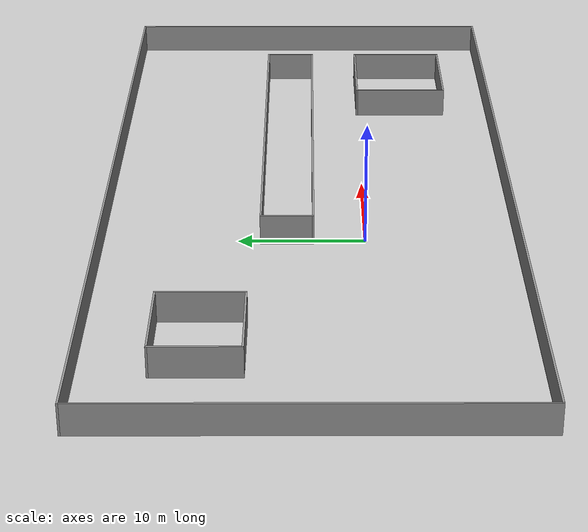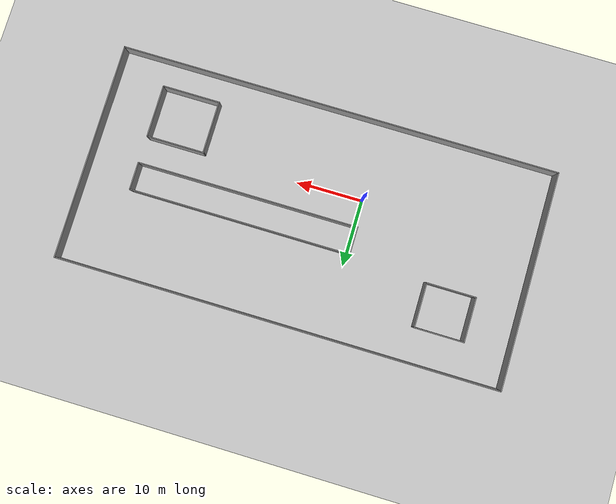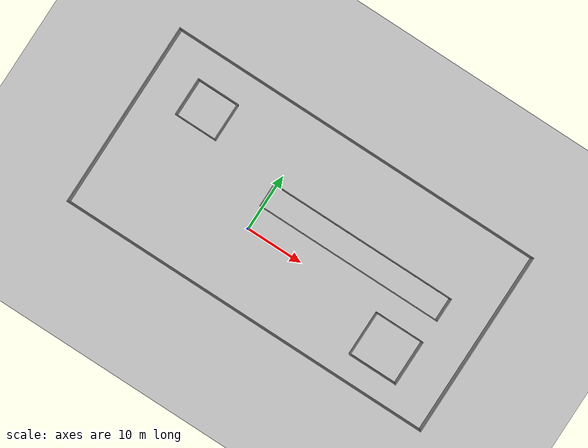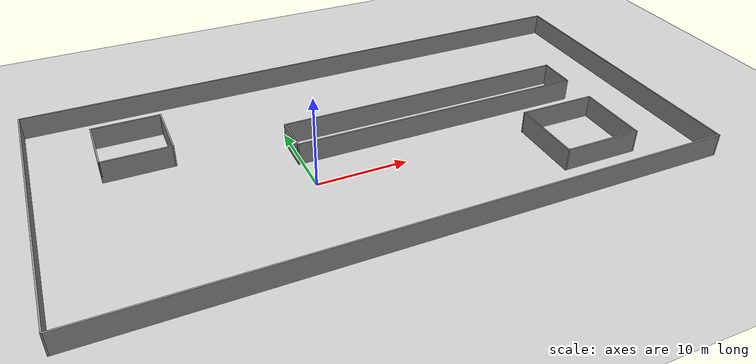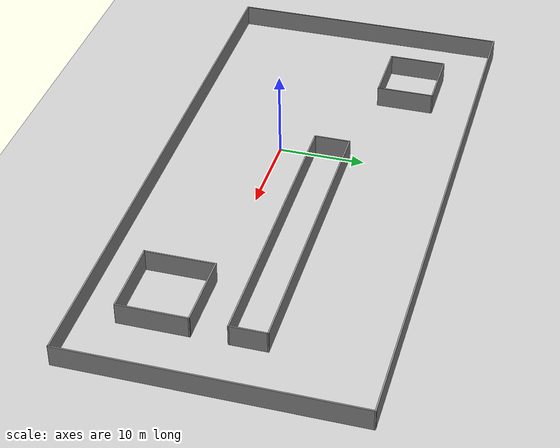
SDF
<sdf version="1.6">
 <world name="default">
  <light name="sun" type="directional">
   <pose>0 0 10 0 -0 0</pose>
   <diffuse>0.8 0.8 0.8 1</diffuse>
   <specular>0.2 0.2 0.2 1</specular>
   <attenuation>
    <range>1000</range>
    <constant>0.9</constant>
    <linear>0.01</linear>
    <quadratic>0.001</quadratic>
   </attenuation>
   <direction>-0.5 0.1 -0.9</direction>
  </light>
  <model name="ground_plane">
   <static>1</static>
   <link name="link">
    <collision name="collision">
     <geometry><plane><normal>0 0 1</normal><size>100 100</size></plane></geometry>
     <surface>
      <contact><collide_bitmask>65535</collide_bitmask></contact>
      <friction><ode><mu>100</mu><mu2>50</mu2></ode></friction>
     </surface>
    </collision>
    <visual name="visual">
     <cast_shadows>0</cast_shadows>
     <geometry><plane><normal>0 0 1</normal><size>100 100</size></plane></geometry>
     <material>
      <script><uri>file://media/materials/scripts/gazebo.material</uri><name>Gazebo/Grey</name></script>
     </material>
    </visual>
   </link>
  </model>
  <gravity>0 0 -9.8</gravity>
  <magnetic_field>6e-06 2.3e-05 -4.2e-05</magnetic_field>
  <atmosphere type="adiabatic"/>
  <physics name="default_physics" default="0" type="ode">
   <max_step_size>0.001</max_step_size>
   <real_time_factor>1</real_time_factor>
   <real_time_update_rate>1000</real_time_update_rate>
  </physics>
  <scene><ambient>0.4 0.4 0.4 1</ambient><background>0.7 0.7 0.7 1</background><shadows>1</shadows></scene>
  <spherical_coordinates>
   <surface_model>EARTH_WGS84</surface_model>
   <latitude_deg>0</latitude_deg>
   <longitude_deg>0</longitude_deg>
   <elevation>0</elevation>
   <heading_deg>0</heading_deg>
  </spherical_coordinates>
  <model name="Park1">
   <pose>6.99416 4.40404 0 0 -0 0</pose>
   <link name="Wall_12">
    <collision name="Wall_12_Collision">
     <geometry><box><size>66.75 0.15 2.5</size></box></geometry>
     <pose>0 0 1.25 0 -0 0</pose>
    </collision>
    <visual name="Wall_12_Visual">
     <pose>0 0 1.25 0 -0 0</pose>
     <geometry><box><size>66.75 0.15 2.5</size></box></geometry>
     <material>
      <script><uri>file://media/materials/scripts/gazebo.material</uri><name>Gazebo/Grey</name></script>
      <ambient>1 1 1 1</ambient>
     </material>
     <meta><layer>0</layer></meta>
    </visual>
    <pose>0 -16.3 0 0 -0 0</pose>
   </link>
   <link name="Wall_13">
    <collision name="Wall_13_Collision">
     <geometry><box><size>32.75 0.15 2.5</size></box></geometry>
     <pose>0 0 1.25 0 -0 0</pose>
    </collision>
    <visual name="Wall_13_Visual">
     <pose>0 0 1.25 0 -0 0</pose>
     <geometry><box><size>32.75 0.15 2.5</size></box></geometry>
     <material>
      <script><uri>file://media/materials/scripts/gazebo.material</uri><name>Gazebo/Grey</name></script>
      <ambient>1 1 1 1</ambient>
     </material>
     <meta><layer>0</layer></meta>
    </visual>
    <pose>33.3 0 0 0 -0 1.5708</pose>
   </link>
   <link name="Wall_14">
    <collision name="Wall_14_Collision">
     <geometry><box><size>66.75 0.15 2.5</size></box></geometry>
     <pose>0 0 1.25 0 -0 0</pose>
    </collision>
    <visual name="Wall_14_Visual">
     <pose>0 0 1.25 0 -0 0</pose>
     <geometry><box><size>66.75 0.15 2.5</size></box></geometry>
     <material>
      <script><uri>file://media/materials/scripts/gazebo.material</uri><name>Gazebo/Grey</name></script>
      <ambient>1 1 1 1</ambient>
     </material>
     <meta><layer>0</layer></meta>
    </visual>
    <pose>0 16.3 0 0 -0 3.14159</pose>
   </link>
   <link name="Wall_15">
    <collision name="Wall_15_Collision">
     <geometry><box><size>32.75 0.15 2.5</size></box></geometry>
     <pose>0 0 1.25 0 -0 0</pose>
    </collision>
    <visual name="Wall_15_Visual">
     <pose>0 0 1.25 0 -0 0</pose>
     <geometry><box><size>32.75 0.15 2.5</size></box></geometry>
     <material>
      <script><uri>file://media/materials/scripts/gazebo.material</uri><name>Gazebo/Grey</name></script>
      <ambient>1 1 1 1</ambient>
     </material>
     <meta><layer>0</layer></meta>
    </visual>
    <pose>-33.3 0 0 0 -0 -1.5708</pose>
   </link>
   <link name="Wall_17">
    <collision name="Wall_17_Collision">
     <geometry><box><size>6.75 0.15 2.5</size></box></geometry>
     <pose>0 0 1.25 0 -0 0</pose>
    </collision>
    <visual name="Wall_17_Visual">
     <pose>0 0 1.25 0 -0 0</pose>
     <geometry><box><size>6.75 0.15 2.5</size></box></geometry>
     <material>
      <script><uri>file://media/materials/scripts/gazebo.material</uri><name>Gazebo/Grey</name></script>
      <ambient>1 1 1 1</ambient>
     </material>
     <meta><layer>0</layer></meta>
    </visual>
    <pose>-26.4809 7.87036 0 0 -0 -1.5708</pose>
   </link>
   <link name="Wall_18">
    <collision name="Wall_18_Collision">
     <geometry><box><size>7.5 0.15 2.5</size></box></geometry>
     <pose>0 0 1.25 0 -0 0</pose>
    </collision>
    <visual name="Wall_18_Visual">
     <pose>0 0 1.25 0 -0 0</pose>
     <geometry><box><size>7.5 0.15 2.5</size></box></geometry>
     <material>
      <script><uri>file://media/materials/scripts/gazebo.material</uri><name>Gazebo/Grey</name></script>
      <ambient>1 1 1 1</ambient>
     </material>
     <meta><layer>0</layer></meta>
    </visual>
    <pose>-22.8059 4.57036 0 0 -0 0</pose>
   </link>
   <link name="Wall_19">
    <collision name="Wall_19_Collision">
     <geometry><box><size>6.75 0.15 2.5</size></box></geometry>
     <pose>0 0 1.25 0 -0 0</pose>
    </collision>
    <visual name="Wall_19_Visual">
     <pose>0 0 1.25 0 -0 0</pose>
     <geometry><box><size>6.75 0.15 2.5</size></box></geometry>
     <material>
      <script><uri>file://media/materials/scripts/gazebo.material</uri><name>Gazebo/Grey</name></script>
      <ambient>1 1 1 1</ambient>
     </material>
     <meta><layer>0</layer></meta>
    </visual>
    <pose>-19.1309 7.87036 0 0 -0 1.5708</pose>
   </link>
   <link name="Wall_20">
    <collision name="Wall_20_Collision">
     <geometry><box><size>7.5 0.15 2.5</size></box></geometry>
     <pose>0 0 1.25 0 -0 0</pose>
    </collision>
    <visual name="Wall_20_Visual">
     <pose>0 0 1.25 0 -0 0</pose>
     <geometry><box><size>7.5 0.15 2.5</size></box></geometry>
     <material>
      <script><uri>file://media/materials/scripts/gazebo.material</uri><name>Gazebo/Grey</name></script>
      <ambient>1 1 1 1</ambient>
     </material>
     <meta><layer>0</layer></meta>
    </visual>
    <pose>-22.8059 11.1704 0 0 -0 3.14159</pose>
   </link>
   <link name="Wall_22">
    <collision name="Wall_22_Collision">
     <geometry><box><size>33.5 0.15 2.5</size></box></geometry>
     <pose>0 0 1.25 0 -0 0</pose>
    </collision>
    <visual name="Wall_22_Visual">
     <pose>0 0 1.25 0 -0 0</pose>
     <geometry><box><size>33.5 0.15 2.5</size></box></geometry>
     <material>
      <script><uri>file://media/materials/scripts/gazebo.material</uri><name>Gazebo/Grey</name></script>
      <ambient>1 1 1 1</ambient>
     </material>
     <meta><layer>0</layer></meta>
    </visual>
    <pose>9.28523 3.80884 0 0 -0 0</pose>
   </link>
   <link name="Wall_23">
    <collision name="Wall_23_Collision">
     <geometry><box><size>4.25 0.15 2.5</size></box></geometry>
     <pose>0 0 1.25 0 -0 0</pose>
    </collision>
    <visual name="Wall_23_Visual">
     <pose>0 0 1.25 0 -0 0</pose>
     <geometry><box><size>4.25 0.15 2.5</size></box></geometry>
     <material>
      <script><uri>file://media/materials/scripts/gazebo.material</uri><name>Gazebo/Grey</name></script>
      <ambient>1 1 1 1</ambient>
     </material>
     <meta><layer>0</layer></meta>
    </visual>
    <pose>25.9602 1.75884 0 0 -0 -1.5708</pose>
   </link>
   <link name="Wall_24">
    <collision name="Wall_24_Collision">
     <geometry><box><size>33.5 0.15 2.5</size></box></geometry>
     <pose>0 0 1.25 0 -0 0</pose>
    </collision>
    <visual name="Wall_24_Visual">
     <pose>0 0 1.25 0 -0 0</pose>
     <geometry><box><size>33.5 0.15 2.5</size></box></geometry>
     <material>
      <script><uri>file://media/materials/scripts/gazebo.material</uri><name>Gazebo/Grey</name></script>
      <ambient>1 1 1 1</ambient>
     </material>
     <meta><layer>0</layer></meta>
    </visual>
    <pose>9.28523 -0.291162 0 0 -0 3.14159</pose>
   </link>
   <link name="Wall_25">
    <collision name="Wall_25_Collision">
     <geometry><box><size>4.25 0.15 2.5</size></box></geometry>
     <pose>0 0 1.25 0 -0 0</pose>
    </collision>
    <visual name="Wall_25_Visual">
     <pose>0 0 1.25 0 -0 0</pose>
     <geometry><box><size>4.25 0.15 2.5</size></box></geometry>
     <material>
      <script><uri>file://media/materials/scripts/gazebo.material</uri><name>Gazebo/Grey</name></script>
      <ambient>1 1 1 1</ambient>
     </material>
     <meta><layer>0</layer></meta>
    </visual>
    <pose>-7.38977 1.75884 0 0 -0 1.5708</pose>
   </link>
   <link name="Wall_27">
    <collision name="Wall_27_Collision">
     <geometry><box><size>8.75 0.15 2.5</size></box></geometry>
     <pose>0 0 1.25 0 -0 0</pose>
    </collision>
    <visual name="Wall_27_Visual">
     <pose>0 0 1.25 0 -0 0</pose>
     <geometry><box><size>8.75 0.15 2.5</size></box></geometry>
     <material>
      <script><uri>file://media/materials/scripts/gazebo.material</uri><name>Gazebo/Grey</name></script>
      <ambient>1 1 1 1</ambient>
     </material>
     <meta><layer>0</layer></meta>
    </visual>
    <pose>21.643 -4.39312 0 0 -0 3.14159</pose>
   </link>
   <link name="Wall_28">
    <collision name="Wall_28_Collision">
     <geometry><box><size>8 0.15 2.5</size></box></geometry>
     <pose>0 0 1.25 0 -0 0</pose>
    </collision>
    <visual name="Wall_28_Visual">
     <pose>0 0 1.25 0 -0 0</pose>
     <geometry><box><size>8 0.15 2.5</size></box></geometry>
     <material>
      <script><uri>file://media/materials/scripts/gazebo.material</uri><name>Gazebo/Grey</name></script>
      <ambient>1 1 1 1</ambient>
     </material>
     <meta><layer>0</layer></meta>
    </visual>
    <pose>17.343 -8.31812 0 0 -0 -1.5708</pose>
   </link>
   <link name="Wall_29">
    <collision name="Wall_29_Collision">
     <geometry><box><size>8.75 0.15 2.5</size></box></geometry>
     <pose>0 0 1.25 0 -0 0</pose>
    </collision>
    <visual name="Wall_29_Visual">
     <pose>0 0 1.25 0 -0 0</pose>
     <geometry><box><size>8.75 0.15 2.5</size></box></geometry>
     <material>
      <script><uri>file://media/materials/scripts/gazebo.material</uri><name>Gazebo/Grey</name></script>
      <ambient>1 1 1 1</ambient>
     </material>
     <meta><layer>0</layer></meta>
    </visual>
    <pose>21.643 -12.2431 0 0 -0 0</pose>
   </link>
   <link name="Wall_30">
    <collision name="Wall_30_Collision">
     <geometry><box><size>8 0.15 2.5</size></box></geometry>
     <pose>0 0 1.25 0 -0 0</pose>
    </collision>
    <visual name="Wall_30_Visual">
     <pose>0 0 1.25 0 -0 0</pose>
     <geometry><box><size>8 0.15 2.5</size></box></geometry>
     <material>
      <script><uri>file://media/materials/scripts/gazebo.material</uri><name>Gazebo/Grey</name></script>
      <ambient>1 1 1 1</ambient>
     </material>
     <meta><layer>0</layer></meta>
    </visual>
    <pose>25.943 -8.31812 0 0 -0 1.5708</pose>
   </link>
   <static>1</static>
  </model>
 </world>
</sdf>
